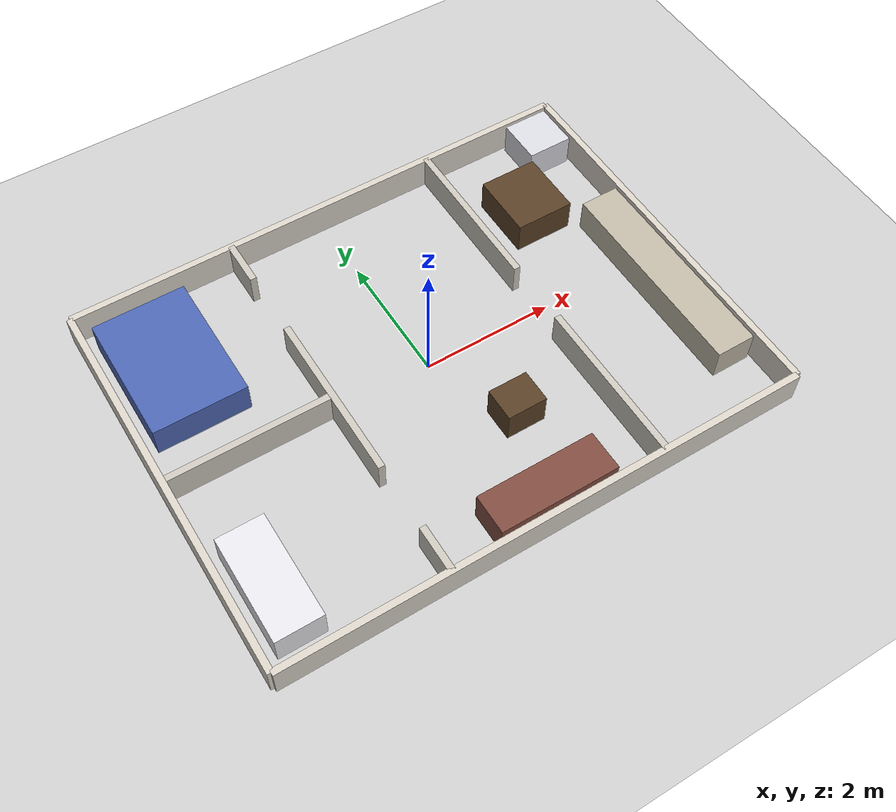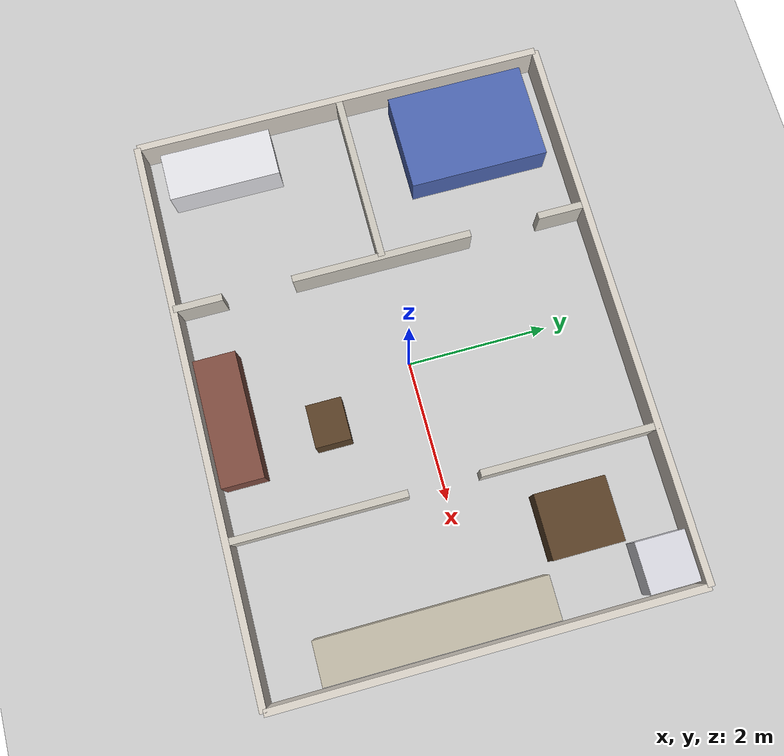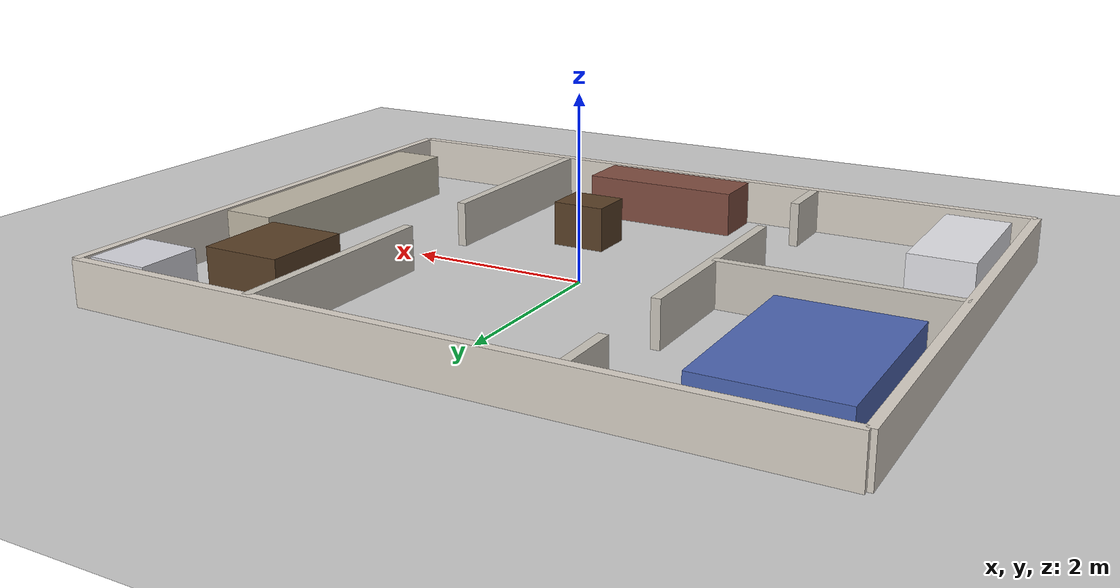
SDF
<?xml version="1.0"?>
<sdf version="1.6">
  <world name="apartment_world">

    <!-- lighting -->
    <include>
      <uri>model://sun</uri>
    </include>

    <!-- ground plane -->
    <include>
      <uri>model://ground_plane</uri>
    </include>

    <!-- ===== Outer walls (8x6 footprint) ===== -->
    <model name="north_wall">
      <static>true</static>
      <link name="link">
        <collision name="collision"><geometry><box><size>8 0.1 0.5</size></box></geometry></collision>
        <visual name="visual">
          <geometry><box><size>8 0.1 0.5</size></box></geometry>
          <material><ambient>0.85 0.82 0.78 1</ambient><diffuse>0.85 0.82 0.78 1</diffuse></material>
        </visual>
      </link>
      <pose>0 3 0.25 0 0 0</pose>
    </model>

    <model name="south_wall">
      <static>true</static>
      <link name="link">
        <collision name="collision"><geometry><box><size>8 0.1 0.5</size></box></geometry></collision>
        <visual name="visual">
          <geometry><box><size>8 0.1 0.5</size></box></geometry>
          <material><ambient>0.85 0.82 0.78 1</ambient><diffuse>0.85 0.82 0.78 1</diffuse></material>
        </visual>
      </link>
      <pose>0 -3 0.25 0 0 0</pose>
    </model>

    <model name="east_wall">
      <static>true</static>
      <link name="link">
        <collision name="collision"><geometry><box><size>0.1 6 0.5</size></box></geometry></collision>
        <visual name="visual">
          <geometry><box><size>0.1 6 0.5</size></box></geometry>
          <material><ambient>0.85 0.82 0.78 1</ambient><diffuse>0.85 0.82 0.78 1</diffuse></material>
        </visual>
      </link>
      <pose>4 0 0.25 0 0 0</pose>
    </model>

    <model name="west_wall">
      <static>true</static>
      <link name="link">
        <collision name="collision"><geometry><box><size>0.1 6 0.5</size></box></geometry></collision>
        <visual name="visual">
          <geometry><box><size>0.1 6 0.5</size></box></geometry>
          <material><ambient>0.85 0.82 0.78 1</ambient><diffuse>0.85 0.82 0.78 1</diffuse></material>
        </visual>
      </link>
      <pose>-4 0 0.25 0 0 0</pose>
    </model>

    <!-- ===== Interior wall: left rooms vs. living room (vertical at x=-1.5) =====
         Two doorways: into the bedroom (top) and the bathroom (bottom). -->
    <model name="div_left_bottom">
      <static>true</static>
      <link name="link">
        <collision name="collision"><geometry><box><size>0.1 0.7 0.5</size></box></geometry></collision>
        <visual name="visual">
          <geometry><box><size>0.1 0.7 0.5</size></box></geometry>
          <material><ambient>0.8 0.78 0.74 1</ambient><diffuse>0.8 0.78 0.74 1</diffuse></material>
        </visual>
      </link>
      <pose>-1.5 -2.65 0.25 0 0 0</pose>
    </model>

    <model name="div_left_middle">
      <static>true</static>
      <link name="link">
        <collision name="collision"><geometry><box><size>0.1 2.6 0.5</size></box></geometry></collision>
        <visual name="visual">
          <geometry><box><size>0.1 2.6 0.5</size></box></geometry>
          <material><ambient>0.8 0.78 0.74 1</ambient><diffuse>0.8 0.78 0.74 1</diffuse></material>
        </visual>
      </link>
      <pose>-1.5 0 0.25 0 0 0</pose>
    </model>

    <model name="div_left_top">
      <static>true</static>
      <link name="link">
        <collision name="collision"><geometry><box><size>0.1 0.7 0.5</size></box></geometry></collision>
        <visual name="visual">
          <geometry><box><size>0.1 0.7 0.5</size></box></geometry>
          <material><ambient>0.8 0.78 0.74 1</ambient><diffuse>0.8 0.78 0.74 1</diffuse></material>
        </visual>
      </link>
      <pose>-1.5 2.65 0.25 0 0 0</pose>
    </model>

    <!-- Wall between bedroom (top) and bathroom (bottom): horizontal at y=0 -->
    <model name="div_bedroom_bathroom">
      <static>true</static>
      <link name="link">
        <collision name="collision"><geometry><box><size>2.5 0.1 0.5</size></box></geometry></collision>
        <visual name="visual">
          <geometry><box><size>2.5 0.1 0.5</size></box></geometry>
          <material><ambient>0.8 0.78 0.74 1</ambient><diffuse>0.8 0.78 0.74 1</diffuse></material>
        </visual>
      </link>
      <pose>-2.75 0 0.25 0 0 0</pose>
    </model>

    <!-- ===== Interior wall: living room vs. kitchen (vertical at x=1.8) =====
         One central doorway. -->
    <model name="div_right_bottom">
      <static>true</static>
      <link name="link">
        <collision name="collision"><geometry><box><size>0.1 2.5 0.5</size></box></geometry></collision>
        <visual name="visual">
          <geometry><box><size>0.1 2.5 0.5</size></box></geometry>
          <material><ambient>0.8 0.78 0.74 1</ambient><diffuse>0.8 0.78 0.74 1</diffuse></material>
        </visual>
      </link>
      <pose>1.8 -1.75 0.25 0 0 0</pose>
    </model>

    <model name="div_right_top">
      <static>true</static>
      <link name="link">
        <collision name="collision"><geometry><box><size>0.1 2.5 0.5</size></box></geometry></collision>
        <visual name="visual">
          <geometry><box><size>0.1 2.5 0.5</size></box></geometry>
          <material><ambient>0.8 0.78 0.74 1</ambient><diffuse>0.8 0.78 0.74 1</diffuse></material>
        </visual>
      </link>
      <pose>1.8 1.75 0.25 0 0 0</pose>
    </model>

    <!-- ===== Furniture (static obstacles) ===== -->
    <!-- Bedroom: bed (top-left room) -->
    <model name="bed">
      <static>true</static>
      <link name="link">
        <collision name="collision"><geometry><box><size>1.4 2.0 0.5</size></box></geometry></collision>
        <visual name="visual">
          <geometry><box><size>1.4 2.0 0.5</size></box></geometry>
          <material><ambient>0.3 0.4 0.7 1</ambient><diffuse>0.3 0.4 0.7 1</diffuse></material>
        </visual>
      </link>
      <pose>-3.1 1.7 0.25 0 0 0</pose>
    </model>

    <!-- Bathroom: tub (bottom-left room) -->
    <model name="bathtub">
      <static>true</static>
      <link name="link">
        <collision name="collision"><geometry><box><size>0.7 1.6 0.5</size></box></geometry></collision>
        <visual name="visual">
          <geometry><box><size>0.7 1.6 0.5</size></box></geometry>
          <material><ambient>0.9 0.9 0.92 1</ambient><diffuse>0.9 0.9 0.92 1</diffuse></material>
        </visual>
      </link>
      <pose>-3.45 -1.9 0.25 0 0 0</pose>
    </model>

    <!-- Living room: couch along the south wall -->
    <model name="couch">
      <static>true</static>
      <link name="link">
        <collision name="collision"><geometry><box><size>1.8 0.6 0.5</size></box></geometry></collision>
        <visual name="visual">
          <geometry><box><size>1.8 0.6 0.5</size></box></geometry>
          <material><ambient>0.5 0.3 0.25 1</ambient><diffuse>0.5 0.3 0.25 1</diffuse></material>
        </visual>
      </link>
      <pose>0.2 -2.6 0.25 0 0 0</pose>
    </model>

    <!-- Living room: coffee table (kept off the (0,0) spawn) -->
    <model name="coffee_table">
      <static>true</static>
      <link name="link">
        <collision name="collision"><geometry><box><size>0.6 0.5 0.5</size></box></geometry></collision>
        <visual name="visual">
          <geometry><box><size>0.6 0.5 0.5</size></box></geometry>
          <material><ambient>0.35 0.25 0.15 1</ambient><diffuse>0.35 0.25 0.15 1</diffuse></material>
        </visual>
      </link>
      <pose>0.6 -1.3 0.25 0 0 0</pose>
    </model>

    <!-- Kitchen: counter along the east wall -->
    <model name="kitchen_counter">
      <static>true</static>
      <link name="link">
        <collision name="collision"><geometry><box><size>0.6 3.2 0.5</size></box></geometry></collision>
        <visual name="visual">
          <geometry><box><size>0.6 3.2 0.5</size></box></geometry>
          <material><ambient>0.75 0.72 0.65 1</ambient><diffuse>0.75 0.72 0.65 1</diffuse></material>
        </visual>
      </link>
      <pose>3.6 -0.6 0.25 0 0 0</pose>
    </model>

    <!-- Kitchen: fridge in the top corner -->
    <model name="fridge">
      <static>true</static>
      <link name="link">
        <collision name="collision"><geometry><box><size>0.7 0.7 0.5</size></box></geometry></collision>
        <visual name="visual">
          <geometry><box><size>0.7 0.7 0.5</size></box></geometry>
          <material><ambient>0.85 0.85 0.88 1</ambient><diffuse>0.85 0.85 0.88 1</diffuse></material>
        </visual>
      </link>
      <pose>3.55 2.55 0.25 0 0 0</pose>
    </model>

    <!-- Kitchen: dining table -->
    <model name="dining_table">
      <static>true</static>
      <link name="link">
        <collision name="collision"><geometry><box><size>0.9 1.0 0.5</size></box></geometry></collision>
        <visual name="visual">
          <geometry><box><size>0.9 1.0 0.5</size></box></geometry>
          <material><ambient>0.35 0.25 0.15 1</ambient><diffuse>0.35 0.25 0.15 1</diffuse></material>
        </visual>
      </link>
      <pose>2.7 1.6 0.25 0 0 0</pose>
    </model>

  </world>
</sdf>
